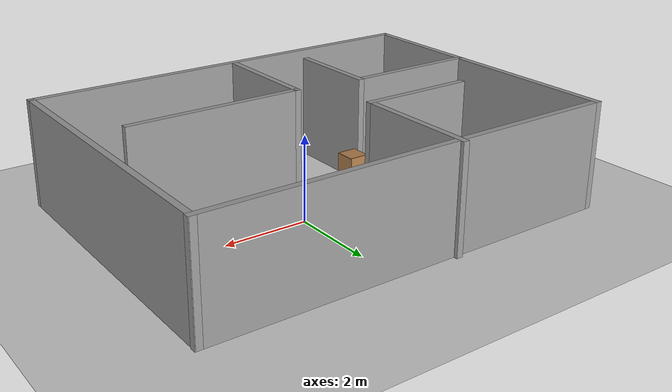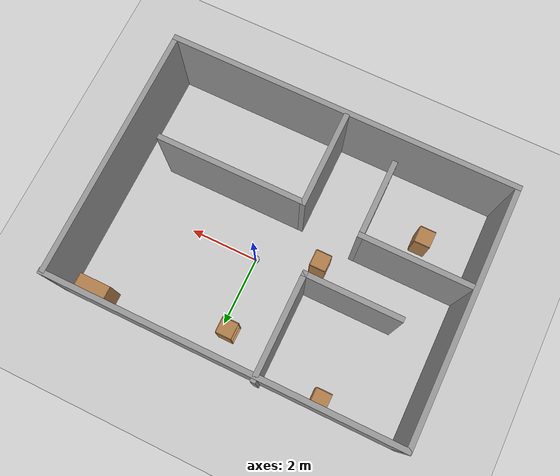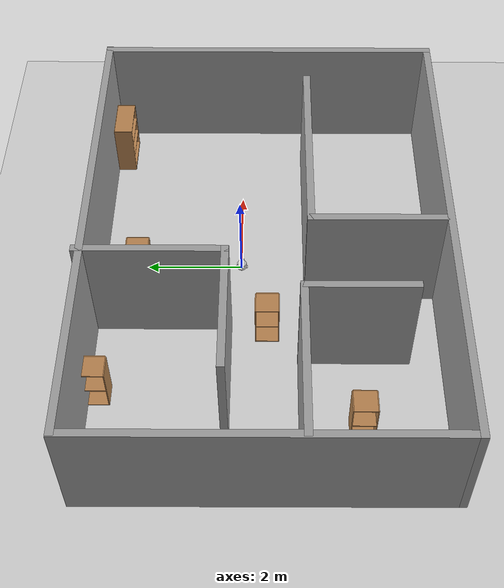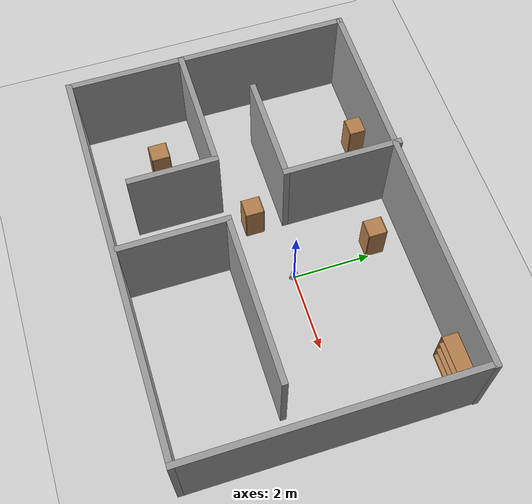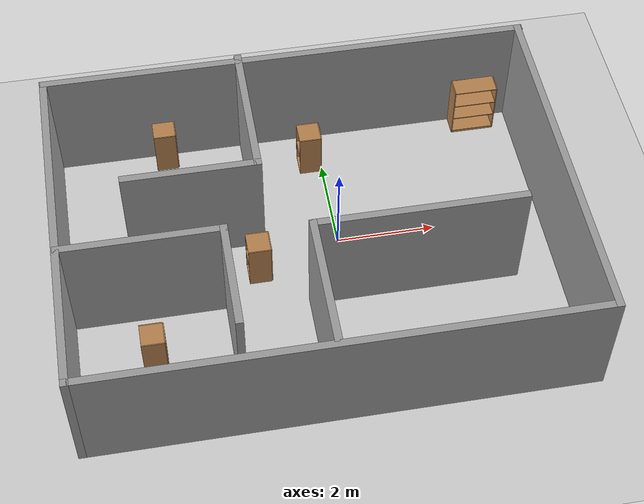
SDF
<sdf version="1.7">
 <world name="default">
  <light name="sun" type="directional">
   <pose>0 0 10 0 -0 0</pose>
   <diffuse>0.8 0.8 0.8 1</diffuse>
   <specular>0.2 0.2 0.2 1</specular>
   <attenuation>
    <range>1000</range>
    <constant>0.9</constant>
    <linear>0.01</linear>
    <quadratic>0.001</quadratic>
   </attenuation>
   <direction>-0.5 0.1 -0.9</direction>
   <spot><inner_angle>0</inner_angle><outer_angle>0</outer_angle><falloff>0</falloff></spot>
  </light>
  <model name="ground_plane">
   <static>1</static>
   <link name="link">
    <collision name="collision">
     <geometry><plane><normal>0 0 1</normal><size>100 100</size></plane></geometry>
     <surface><friction><ode><mu>100</mu><mu2>50</mu2></ode></friction></surface>
    </collision>
    <visual name="visual">
     <cast_shadows>0</cast_shadows>
     <geometry><plane><normal>0 0 1</normal><size>100 100</size></plane></geometry>
     <material>
      <script><uri>file://media/materials/scripts/gazebo.material</uri><name>Gazebo/Grey</name></script>
     </material>
    </visual>
   </link>
  </model>
  <gravity>0 0 -9.8</gravity>
  <magnetic_field>6e-06 2.3e-05 -4.2e-05</magnetic_field>
  <atmosphere type="adiabatic"/>
  <physics type="ode">
   <max_step_size>0.001</max_step_size>
   <real_time_factor>1</real_time_factor>
   <real_time_update_rate>1000</real_time_update_rate>
  </physics>
  <scene><ambient>0.4 0.4 0.4 1</ambient><background>0.7 0.7 0.7 1</background><shadows>1</shadows></scene>
  <audio><device>default</device></audio>
  <spherical_coordinates>
   <surface_model>EARTH_WGS84</surface_model>
   <latitude_deg>0</latitude_deg>
   <longitude_deg>0</longitude_deg>
   <elevation>0</elevation>
   <heading_deg>0</heading_deg>
  </spherical_coordinates>
  <model name="fishbot">
   <link name="base_footprint">
    <inertial>
     <pose>0.007407 0 0.100926 0 -0 0</pose>
     <mass>1.35</mass>
     <inertia>
      <ixx>0.00650192</ixx>
      <ixy>0</ixy>
      <ixz>-0.000650741</ixz>
      <iyy>0.00798784</iyy>
      <iyz>0</iyz>
      <izz>0.00667867</izz>
     </inertia>
    </inertial>
    <collision name="base_footprint_fixed_joint_lump__base_link_collision">
     <pose>0 0 0.091 0 -0 0</pose>
     <geometry><cylinder><length>0.12</length><radius>0.1</radius></cylinder></geometry>
    </collision>
    <collision name="base_footprint_fixed_joint_lump__back_caster_link_collision_1">
     <pose>-0.08 0 0.015 0 -0 0</pose>
     <geometry><sphere><radius>0.016</radius></sphere></geometry>
     <surface>
      <contact><ode><kp>1e+09</kp><kd>1</kd></ode></contact>
      <friction><ode><mu>0</mu><mu2>0</mu2></ode></friction>
     </surface>
    </collision>
    <collision name="base_footprint_fixed_joint_lump__camera_link_collision_2">
     <pose>0.1 0 0.166 0 -0 0</pose>
     <geometry><box><size>0.02 0.1 0.02</size></box></geometry>
    </collision>
    <collision name="base_footprint_fixed_joint_lump__front_caster_link_collision_3">
     <pose>0.08 0 0.015 0 -0 0</pose>
     <geometry><sphere><radius>0.016</radius></sphere></geometry>
     <surface>
      <contact><ode><kp>1e+09</kp><kd>1</kd></ode></contact>
      <friction><ode><mu>0</mu><mu2>0</mu2></ode></friction>
     </surface>
    </collision>
    <collision name="base_footprint_fixed_joint_lump__imu_link_collision_4">
     <pose>0 0 0.111 0 -0 0</pose>
     <geometry><box><size>0.02 0.02 0.02</size></box></geometry>
    </collision>
    <collision name="base_footprint_fixed_joint_lump__laser_cylinder_link_collision_5">
     <pose>0 0 0.191 0 -0 0</pose>
     <geometry><cylinder><length>0.1</length><radius>0.01</radius></cylinder></geometry>
    </collision>
    <collision name="base_footprint_fixed_joint_lump__laser_link_collision_6">
     <pose>0 0 0.241 0 -0 0</pose>
     <geometry><cylinder><length>0.02</length><radius>0.02</radius></cylinder></geometry>
    </collision>
    <visual name="base_footprint_fixed_joint_lump__base_link_visual">
     <pose>0 0 0.091 0 -0 0</pose>
     <geometry><cylinder><length>0.12</length><radius>0.1</radius></cylinder></geometry>
    </visual>
    <visual name="base_footprint_fixed_joint_lump__back_caster_link_visual_1">
     <pose>-0.08 0 0.015 0 -0 0</pose>
     <geometry><sphere><radius>0.016</radius></sphere></geometry>
    </visual>
    <visual name="base_footprint_fixed_joint_lump__camera_link_visual_2">
     <pose>0.1 0 0.166 0 -0 0</pose>
     <geometry><box><size>0.02 0.1 0.02</size></box></geometry>
    </visual>
    <visual name="base_footprint_fixed_joint_lump__front_caster_link_visual_3">
     <pose>0.08 0 0.015 0 -0 0</pose>
     <geometry><sphere><radius>0.016</radius></sphere></geometry>
    </visual>
    <visual name="base_footprint_fixed_joint_lump__imu_link_visual_4">
     <pose>0 0 0.111 0 -0 0</pose>
     <geometry><box><size>0.02 0.02 0.02</size></box></geometry>
    </visual>
    <visual name="base_footprint_fixed_joint_lump__laser_cylinder_link_visual_5">
     <pose>0 0 0.191 0 -0 0</pose>
     <geometry><cylinder><length>0.1</length><radius>0.01</radius></cylinder></geometry>
     <material>
      <script><name>Gazebo/Black</name><uri>file://media/materials/scripts/gazebo.material</uri></script>
     </material>
    </visual>
    <visual name="base_footprint_fixed_joint_lump__laser_link_visual_6">
     <pose>0 0 0.241 0 -0 0</pose>
     <geometry><cylinder><length>0.02</length><radius>0.02</radius></cylinder></geometry>
     <material>
      <script><name>Gazebo/Black</name><uri>file://media/materials/scripts/gazebo.material</uri></script>
     </material>
    </visual>
    <sensor name="camera_sensor" type="depth">
     <plugin name="depth_camera" filename="libgazebo_ros_camera.so">
      <frame_name>camera_optical_link</frame_name>
     </plugin>
     <always_on>1</always_on>
     <update_rate>10</update_rate>
     <camera name="camera">
      <horizontal_fov>1.50098</horizontal_fov>
      <image><width>800</width><height>600</height><format>R8G8B8</format></image>
      <distortion><k1>0</k1><k2>0</k2><k3>0</k3><p1>0</p1><p2>0</p2><center>0.5 0.5</center></distortion>
      <clip><near>0.1</near><far>100</far></clip>
     </camera>
     <pose>0.1 0 0.166 0 -0 0</pose>
    </sensor>
    <sensor name="imu_sensor" type="imu">
     <plugin name="imu_plugin" filename="libgazebo_ros_imu_sensor.so">
      <ros><namespace>/</namespace><remapping>~/out:=imu</remapping></ros>
      <initial_orientation_as_reference>0</initial_orientation_as_reference>
     </plugin>
     <update_rate>100</update_rate>
     <always_on>1</always_on>
     <imu>
      <angular_velocity>
       <x>
        <noise type="gaussian">
         <mean>0</mean>
         <stddev>0.0002</stddev>
         <bias_mean>7.5e-06</bias_mean>
         <bias_stddev>8e-07</bias_stddev>
        </noise>
       </x>
       <y>
        <noise type="gaussian">
         <mean>0</mean>
         <stddev>0.0002</stddev>
         <bias_mean>7.5e-06</bias_mean>
         <bias_stddev>8e-07</bias_stddev>
        </noise>
       </y>
       <z>
        <noise type="gaussian">
         <mean>0</mean>
         <stddev>0.0002</stddev>
         <bias_mean>7.5e-06</bias_mean>
         <bias_stddev>8e-07</bias_stddev>
        </noise>
       </z>
      </angular_velocity>
      <linear_acceleration>
       <x>
        <noise type="gaussian">
         <mean>0</mean>
         <stddev>0.017</stddev>
         <bias_mean>0.1</bias_mean>
         <bias_stddev>0.001</bias_stddev>
        </noise>
       </x>
       <y>
        <noise type="gaussian">
         <mean>0</mean>
         <stddev>0.017</stddev>
         <bias_mean>0.1</bias_mean>
         <bias_stddev>0.001</bias_stddev>
        </noise>
       </y>
       <z>
        <noise type="gaussian">
         <mean>0</mean>
         <stddev>0.017</stddev>
         <bias_mean>0.1</bias_mean>
         <bias_stddev>0.001</bias_stddev>
        </noise>
       </z>
      </linear_acceleration>
     </imu>
     <pose>0 0 0.111 0 -0 0</pose>
    </sensor>
    <sensor name="laserscan" type="ray">
     <plugin name="laserscan" filename="libgazebo_ros_ray_sensor.so">
      <ros><namespace>/</namespace><remapping>~/out:=scan</remapping></ros>
      <output_type>sensor_msgs/LaserScan</output_type>
      <frame_name>laser_link</frame_name>
     </plugin>
     <always_on>1</always_on>
     <visualize>1</visualize>
     <update_rate>5</update_rate>
     <ray>
      <scan>
       <horizontal>
        <samples>360</samples>
        <resolution>1</resolution>
        <min_angle>0</min_angle>
        <max_angle>6.28</max_angle>
       </horizontal>
       <vertical><samples>1</samples><min_angle>0</min_angle><max_angle>0</max_angle></vertical>
      </scan>
      <range><min>0.12</min><max>8</max><resolution>0.015</resolution></range>
      <noise><type>gaussian</type><mean>0</mean><stddev>0.01</stddev></noise>
     </ray>
     <pose>0 0 0.241 0 -0 0</pose>
    </sensor>
   </link>
   <joint name="left_wheel_joint" type="revolute">
    <pose relative_to="base_footprint">0 0.1 0.031 0 -0 0</pose>
    <parent>base_footprint</parent>
    <child>left_wheel_link</child>
    <axis>
     <xyz>0 1 0</xyz>
     <limit><lower>-1e+16</lower><upper>1e+16</upper></limit>
     <dynamics><spring_reference>0</spring_reference><spring_stiffness>0</spring_stiffness></dynamics>
    </axis>
   </joint>
   <link name="left_wheel_link">
    <pose relative_to="left_wheel_joint">0 0 0 0 -0 0</pose>
    <inertial>
     <mass>0.05</mass>
     <inertia>
      <ixx>1.98698e-05</ixx>
      <ixy>0</ixy>
      <ixz>0</ixz>
      <iyy>1.98698e-05</iyy>
      <iyz>0</iyz>
      <izz>2.64063e-05</izz>
     </inertia>
    </inertial>
    <collision name="left_wheel_link_collision">
     <pose>0 0 0 1.57079 -0 0</pose>
     <geometry><cylinder><length>0.04</length><radius>0.0325</radius></cylinder></geometry>
     <surface>
      <contact><ode><kp>1e+09</kp><kd>1</kd></ode></contact>
      <friction><ode><mu>20</mu><mu2>20</mu2></ode></friction>
     </surface>
    </collision>
    <visual name="left_wheel_link_visual">
     <pose>0 0 0 1.57079 -0 0</pose>
     <geometry><cylinder><length>0.04</length><radius>0.0325</radius></cylinder></geometry>
    </visual>
   </link>
   <joint name="right_wheel_joint" type="revolute">
    <pose relative_to="base_footprint">0 -0.1 0.031 0 -0 0</pose>
    <parent>base_footprint</parent>
    <child>right_wheel_link</child>
    <axis>
     <xyz>0 1 0</xyz>
     <limit><lower>-1e+16</lower><upper>1e+16</upper></limit>
     <dynamics><spring_reference>0</spring_reference><spring_stiffness>0</spring_stiffness></dynamics>
    </axis>
   </joint>
   <link name="right_wheel_link">
    <pose relative_to="right_wheel_joint">0 0 0 0 -0 0</pose>
    <inertial>
     <mass>0.05</mass>
     <inertia>
      <ixx>1.98698e-05</ixx>
      <ixy>0</ixy>
      <ixz>0</ixz>
      <iyy>1.98698e-05</iyy>
      <iyz>0</iyz>
      <izz>2.64063e-05</izz>
     </inertia>
    </inertial>
    <collision name="right_wheel_link_collision">
     <pose>0 0 0 1.57079 -0 0</pose>
     <geometry><cylinder><length>0.04</length><radius>0.0325</radius></cylinder></geometry>
     <surface>
      <contact><ode><kp>1e+09</kp><kd>1</kd></ode></contact>
      <friction><ode><mu>20</mu><mu2>20</mu2></ode></friction>
     </surface>
    </collision>
    <visual name="right_wheel_link_visual">
     <pose>0 0 0 1.57079 -0 0</pose>
     <geometry><cylinder><length>0.04</length><radius>0.0325</radius></cylinder></geometry>
    </visual>
   </link>
   <static>0</static>
   <plugin name="gazebo_ros2_control" filename="libgazebo_ros2_control.so">
    <parameters>/home/zilu/myProgramFile/learnRos2/cpp/install/ch6_bot_desc/share/ch6_bot_desc/config/fishbot_ros2_controller.yaml</parameters>
    <ros>
     <remapping>/fishbot_diff_drive_controller/cmd_vel_unstamped:=/cmd_vel</remapping>
     <remapping>/fishbot_diff_drive_controller/odom:=/odom</remapping>
    </ros>
   </plugin>
   <pose>0.002888 -0.005666 0.001497 2e-06 0.006212 -0.000967</pose>
  </model>
  <model name="model">
   <pose>-0.603149 -0.514582 0 0 -0 0</pose>
   <link name="Wall_0">
    <collision name="Wall_0_Collision">
     <geometry><box><size>10 0.15 2.5</size></box></geometry>
     <pose>0 0 1.25 0 -0 0</pose>
    </collision>
    <visual name="Wall_0_Visual">
     <pose>0 0 1.25 0 -0 0</pose>
     <geometry><box><size>10 0.15 2.5</size></box></geometry>
     <material>
      <script><uri>file://media/materials/scripts/gazebo.material</uri><name>Gazebo/Grey</name></script>
      <ambient>1 1 1 1</ambient>
     </material>
     <meta><layer>0</layer></meta>
    </visual>
    <pose>-0.008745 -3.60924 0 0 -0 3.14159</pose>
   </link>
   <link name="Wall_10">
    <collision name="Wall_10_Collision">
     <geometry><box><size>3 0.15 2.5</size></box></geometry>
     <pose>0 0 1.25 0 -0 0</pose>
    </collision>
    <visual name="Wall_10_Visual">
     <pose>0 0 1.25 0 -0 0</pose>
     <geometry><box><size>3 0.15 2.5</size></box></geometry>
     <material>
      <script><uri>file://media/materials/scripts/gazebo.material</uri><name>Gazebo/Grey</name></script>
      <ambient>1 1 1 1</ambient>
     </material>
     <meta><layer>0</layer></meta>
    </visual>
    <pose>-0.95956 2.18425 0 0 -0 -1.5708</pose>
   </link>
   <link name="Wall_11">
    <collision name="Wall_11_Collision">
     <geometry><box><size>2.75 0.15 2.5</size></box></geometry>
     <pose>0 0 1.25 0 -0 0</pose>
    </collision>
    <visual name="Wall_11_Visual">
     <pose>0 0 1.25 0 -0 0</pose>
     <geometry><box><size>2.75 0.15 2.5</size></box></geometry>
     <material>
      <script><uri>file://media/materials/scripts/gazebo.material</uri><name>Gazebo/Grey</name></script>
      <ambient>1 1 1 1</ambient>
     </material>
     <meta><layer>0</layer></meta>
    </visual>
    <pose>-2.25956 0.75925 0 0 -0 3.14159</pose>
   </link>
   <link name="Wall_13">
    <collision name="Wall_13_Collision">
     <geometry><box><size>3.25 0.15 2.5</size></box></geometry>
     <pose>0 0 1.25 0 -0 0</pose>
    </collision>
    <visual name="Wall_13_Visual">
     <pose>0 0 1.25 0 -0 0</pose>
     <geometry><box><size>3.25 0.15 2.5</size></box></geometry>
     <material>
      <script><uri>file://media/materials/scripts/gazebo.material</uri><name>Gazebo/Grey</name></script>
      <ambient>1 1 1 1</ambient>
     </material>
     <meta><layer>0</layer></meta>
    </visual>
    <pose>-3.36231 -0.728285 0 0 -0 0</pose>
   </link>
   <link name="Wall_14">
    <collision name="Wall_14_Collision">
     <geometry><box><size>2.25 0.15 2.5</size></box></geometry>
     <pose>0 0 1.25 0 -0 0</pose>
    </collision>
    <visual name="Wall_14_Visual">
     <pose>0 0 1.25 0 -0 0</pose>
     <geometry><box><size>2.25 0.15 2.5</size></box></geometry>
     <material>
      <script><uri>file://media/materials/scripts/gazebo.material</uri><name>Gazebo/Grey</name></script>
      <ambient>1 1 1 1</ambient>
     </material>
     <meta><layer>0</layer></meta>
    </visual>
    <pose>-1.81231 -1.77828 0 0 -0 -1.5708</pose>
   </link>
   <link name="Wall_16">
    <collision name="Wall_16_Collision">
     <geometry><box><size>2.75 0.15 2.5</size></box></geometry>
     <pose>0 0 1.25 0 -0 0</pose>
    </collision>
    <visual name="Wall_16_Visual">
     <pose>0 0 1.25 0 -0 0</pose>
     <geometry><box><size>2.75 0.15 2.5</size></box></geometry>
     <material>
      <script><uri>file://media/materials/scripts/gazebo.material</uri><name>Gazebo/Grey</name></script>
      <ambient>1 1 1 1</ambient>
     </material>
     <meta><layer>0</layer></meta>
    </visual>
    <pose>-0.155017 -2.19171 0 0 -0 1.5708</pose>
   </link>
   <link name="Wall_17">
    <collision name="Wall_17_Collision">
     <geometry><box><size>4.25 0.15 2.5</size></box></geometry>
     <pose>0 0 1.25 0 -0 0</pose>
    </collision>
    <visual name="Wall_17_Visual">
     <pose>0 0 1.25 0 -0 0</pose>
     <geometry><box><size>4.25 0.15 2.5</size></box></geometry>
     <material>
      <script><uri>file://media/materials/scripts/gazebo.material</uri><name>Gazebo/Grey</name></script>
      <ambient>1 1 1 1</ambient>
     </material>
     <meta><layer>0</layer></meta>
    </visual>
    <pose>1.89498 -0.891715 0 0 -0 0</pose>
   </link>
   <link name="Wall_6">
    <collision name="Wall_6_Collision">
     <geometry><box><size>7.27986 0.15 2.5</size></box></geometry>
     <pose>0 0 1.25 0 -0 0</pose>
    </collision>
    <visual name="Wall_6_Visual">
     <pose>0 0 1.25 0 -0 0</pose>
     <geometry><box><size>7.27986 0.15 2.5</size></box></geometry>
     <material>
      <script><uri>file://media/materials/scripts/gazebo.material</uri><name>Gazebo/Grey</name></script>
      <ambient>1 1 1 1</ambient>
     </material>
     <meta><layer>0</layer></meta>
    </visual>
    <pose>-4.93375 -0.044319 0 0 -0 1.5708</pose>
   </link>
   <link name="Wall_7">
    <collision name="Wall_7_Collision">
     <geometry><box><size>10 0.15 2.5</size></box></geometry>
     <pose>0 0 1.25 0 -0 0</pose>
    </collision>
    <visual name="Wall_7_Visual">
     <pose>0 0 1.25 0 -0 0</pose>
     <geometry><box><size>10 0.15 2.5</size></box></geometry>
     <material>
      <script><uri>file://media/materials/scripts/gazebo.material</uri><name>Gazebo/Grey</name></script>
      <ambient>1 1 1 1</ambient>
     </material>
     <meta><layer>0</layer></meta>
    </visual>
    <pose>0.008745 3.5206 0 0 -0 0</pose>
   </link>
   <link name="Wall_8">
    <collision name="Wall_8_Collision">
     <geometry><box><size>7.27986 0.15 2.5</size></box></geometry>
     <pose>0 0 1.25 0 -0 0</pose>
    </collision>
    <visual name="Wall_8_Visual">
     <pose>0 0 1.25 0 -0 0</pose>
     <geometry><box><size>7.27986 0.15 2.5</size></box></geometry>
     <material>
      <script><uri>file://media/materials/scripts/gazebo.material</uri><name>Gazebo/Grey</name></script>
      <ambient>1 1 1 1</ambient>
     </material>
     <meta><layer>0</layer></meta>
    </visual>
    <pose>4.91625 -0.044319 0 0 -0 -1.5708</pose>
   </link>
   <static>1</static>
  </model>
  <model name="bookshelf">
   <static>1</static>
   <link name="link">
    <inertial><mass>1</mass></inertial>
    <collision name="back">
     <pose>0 0.005 0.6 0 -0 0</pose>
     <geometry><box><size>0.9 0.01 1.2</size></box></geometry>
    </collision>
    <visual name="visual1">
     <pose>0 0.005 0.6 0 -0 0</pose>
     <geometry><box><size>0.9 0.01 1.2</size></box></geometry>
     <material>
      <script><uri>file://media/materials/scripts/gazebo.material</uri><name>Gazebo/Wood</name></script>
     </material>
    </visual>
    <collision name="left_side">
     <pose>0.45 -0.195 0.6 0 -0 0</pose>
     <geometry><box><size>0.02 0.4 1.2</size></box></geometry>
    </collision>
    <visual name="visual2">
     <pose>0.45 -0.195 0.6 0 -0 0</pose>
     <geometry><box><size>0.02 0.4 1.2</size></box></geometry>
     <material>
      <script><uri>file://media/materials/scripts/gazebo.material</uri><name>Gazebo/Wood</name></script>
     </material>
    </visual>
    <collision name="right_side">
     <pose>-0.45 -0.195 0.6 0 -0 0</pose>
     <geometry><box><size>0.02 0.4 1.2</size></box></geometry>
    </collision>
    <visual name="visual3">
     <pose>-0.45 -0.195 0.6 0 -0 0</pose>
     <geometry><box><size>0.02 0.4 1.2</size></box></geometry>
     <material>
      <script><uri>file://media/materials/scripts/gazebo.material</uri><name>Gazebo/Wood</name></script>
     </material>
    </visual>
    <collision name="bottom">
     <pose>0 -0.195 0.03 0 -0 0</pose>
     <geometry><box><size>0.88 0.4 0.06</size></box></geometry>
    </collision>
    <visual name="visual4">
     <pose>0 -0.195 0.03 0 -0 0</pose>
     <geometry><box><size>0.88 0.4 0.06</size></box></geometry>
     <material>
      <script><uri>file://media/materials/scripts/gazebo.material</uri><name>Gazebo/Wood</name></script>
     </material>
    </visual>
    <collision name="top">
     <pose>0 -0.195 1.19 0 -0 0</pose>
     <geometry><box><size>0.88 0.4 0.02</size></box></geometry>
    </collision>
    <visual name="visual5">
     <pose>0 -0.195 1.19 0 -0 0</pose>
     <geometry><box><size>0.88 0.4 0.02</size></box></geometry>
     <material>
      <script><uri>file://media/materials/scripts/gazebo.material</uri><name>Gazebo/Wood</name></script>
     </material>
    </visual>
    <collision name="low_shelf">
     <pose>0 -0.195 0.43 0 -0 0</pose>
     <geometry><box><size>0.88 0.4 0.02</size></box></geometry>
    </collision>
    <visual name="visual6">
     <pose>0 -0.195 0.43 0 -0 0</pose>
     <geometry><box><size>0.88 0.4 0.02</size></box></geometry>
     <material>
      <script><uri>file://media/materials/scripts/gazebo.material</uri><name>Gazebo/Wood</name></script>
     </material>
    </visual>
    <collision name="high_shelf">
     <pose>0 -0.195 0.8 0 -0 0</pose>
     <geometry><box><size>0.88 0.4 0.02</size></box></geometry>
    </collision>
    <visual name="visual7">
     <pose>0 -0.195 0.8 0 -0 0</pose>
     <geometry><box><size>0.88 0.4 0.02</size></box></geometry>
     <material>
      <script><uri>file://media/materials/scripts/gazebo.material</uri><name>Gazebo/Wood</name></script>
     </material>
    </visual>
   </link>
   <pose>3.44319 2.92527 0 0 -0 0</pose>
  </model>
  <model name="cabinet">
   <static>1</static>
   <link name="cabinet_bottom_plate">
    <inertial>
     <pose>0 0 -1 0 -0 0</pose>
     <inertia><ixx>2.05</ixx><ixy>0</ixy><ixz>0</ixz><iyy>2.05</iyy><iyz>0</iyz><izz>2.05</izz></inertia>
     <mass>25</mass>
    </inertial>
    <collision name="cabinet_bottom_plate_geom">
     <pose>0 0 0.01 0 -0 0</pose>
     <geometry><box><size>0.45 0.45 0.02</size></box></geometry>
    </collision>
    <visual name="cabinet_bottom_plate_geom_visual">
     <pose>0 0 0.01 0 -0 0</pose>
     <geometry><box><size>0.45 0.45 0.02</size></box></geometry>
     <material>
      <script><uri>file://media/materials/scripts/gazebo.material</uri><name>Gazebo/Wood</name></script>
     </material>
    </visual>
    <collision name="cabinet_bottom_plate_geom_cabinet_back_plate">
     <pose>0.235 0 0.51 0 -0 0</pose>
     <geometry><box><size>0.02 0.45 1.02</size></box></geometry>
    </collision>
    <visual name="cabinet_bottom_plate_geom_cabinet_back_plate_visual">
     <pose>0.235 0 0.51 0 -0 0</pose>
     <geometry><box><size>0.02 0.45 1.02</size></box></geometry>
     <material>
      <script><uri>file://media/materials/scripts/gazebo.material</uri><name>Gazebo/Wood</name></script>
     </material>
    </visual>
    <collision name="cabinet_bottom_plate_geom_cabinet_left_plate">
     <pose>0 0.235 0.51 0 -0 0</pose>
     <geometry><box><size>0.45 0.02 1.02</size></box></geometry>
    </collision>
    <visual name="cabinet_bottom_plate_geom_cabinet_left_plate_visual">
     <pose>0 0.235 0.51 0 -0 0</pose>
     <geometry><box><size>0.45 0.02 1.02</size></box></geometry>
     <material>
      <script><uri>file://media/materials/scripts/gazebo.material</uri><name>Gazebo/Wood</name></script>
     </material>
    </visual>
    <collision name="cabinet_bottom_plate_geom_cabinet_middle_plate">
     <pose>0 0 0.51 0 -0 0</pose>
     <geometry><box><size>0.45 0.45 0.02</size></box></geometry>
    </collision>
    <visual name="cabinet_bottom_plate_geom_cabinet_middle_plate_visual">
     <pose>0 0 0.51 0 -0 0</pose>
     <geometry><box><size>0.45 0.45 0.02</size></box></geometry>
     <material>
      <script><uri>file://media/materials/scripts/gazebo.material</uri><name>Gazebo/Wood</name></script>
     </material>
    </visual>
    <collision name="cabinet_bottom_plate_geom_cabinet_right_plate">
     <pose>0 -0.235 0.51 0 -0 0</pose>
     <geometry><box><size>0.45 0.02 1.02</size></box></geometry>
    </collision>
    <visual name="cabinet_bottom_plate_geom_cabinet_right_plate_visual">
     <pose>0 -0.235 0.51 0 -0 0</pose>
     <geometry><box><size>0.45 0.02 1.02</size></box></geometry>
     <material>
      <script><uri>file://media/materials/scripts/gazebo.material</uri><name>Gazebo/Wood</name></script>
     </material>
    </visual>
    <collision name="cabinet_bottom_plate_geom_cabinet_top_plate">
     <pose>0 0 1.01 0 -0 0</pose>
     <geometry><box><size>0.45 0.45 0.02</size></box></geometry>
    </collision>
    <visual name="cabinet_bottom_plate_geom_cabinet_top_plate_visual">
     <pose>0 0 1.01 0 -0 0</pose>
     <geometry><box><size>0.45 0.45 0.02</size></box></geometry>
     <material>
      <script><uri>file://media/materials/scripts/gazebo.material</uri><name>Gazebo/Wood</name></script>
     </material>
    </visual>
   </link>
   <pose>-3.25013 2.75113 0 0 -0 0</pose>
  </model>
  <model name="cabinet_0">
   <static>1</static>
   <link name="cabinet_bottom_plate">
    <inertial>
     <pose>0 0 -1 0 -0 0</pose>
     <inertia><ixx>2.05</ixx><ixy>0</ixy><ixz>0</ixz><iyy>2.05</iyy><iyz>0</iyz><izz>2.05</izz></inertia>
     <mass>25</mass>
    </inertial>
    <collision name="cabinet_bottom_plate_geom">
     <pose>0 0 0.01 0 -0 0</pose>
     <geometry><box><size>0.45 0.45 0.02</size></box></geometry>
    </collision>
    <visual name="cabinet_bottom_plate_geom_visual">
     <pose>0 0 0.01 0 -0 0</pose>
     <geometry><box><size>0.45 0.45 0.02</size></box></geometry>
     <material>
      <script><uri>file://media/materials/scripts/gazebo.material</uri><name>Gazebo/Wood</name></script>
     </material>
    </visual>
    <collision name="cabinet_bottom_plate_geom_cabinet_back_plate">
     <pose>0.235 0 0.51 0 -0 0</pose>
     <geometry><box><size>0.02 0.45 1.02</size></box></geometry>
    </collision>
    <visual name="cabinet_bottom_plate_geom_cabinet_back_plate_visual">
     <pose>0.235 0 0.51 0 -0 0</pose>
     <geometry><box><size>0.02 0.45 1.02</size></box></geometry>
     <material>
      <script><uri>file://media/materials/scripts/gazebo.material</uri><name>Gazebo/Wood</name></script>
     </material>
    </visual>
    <collision name="cabinet_bottom_plate_geom_cabinet_left_plate">
     <pose>0 0.235 0.51 0 -0 0</pose>
     <geometry><box><size>0.45 0.02 1.02</size></box></geometry>
    </collision>
    <visual name="cabinet_bottom_plate_geom_cabinet_left_plate_visual">
     <pose>0 0.235 0.51 0 -0 0</pose>
     <geometry><box><size>0.45 0.02 1.02</size></box></geometry>
     <material>
      <script><uri>file://media/materials/scripts/gazebo.material</uri><name>Gazebo/Wood</name></script>
     </material>
    </visual>
    <collision name="cabinet_bottom_plate_geom_cabinet_middle_plate">
     <pose>0 0 0.51 0 -0 0</pose>
     <geometry><box><size>0.45 0.45 0.02</size></box></geometry>
    </collision>
    <visual name="cabinet_bottom_plate_geom_cabinet_middle_plate_visual">
     <pose>0 0 0.51 0 -0 0</pose>
     <geometry><box><size>0.45 0.45 0.02</size></box></geometry>
     <material>
      <script><uri>file://media/materials/scripts/gazebo.material</uri><name>Gazebo/Wood</name></script>
     </material>
    </visual>
    <collision name="cabinet_bottom_plate_geom_cabinet_right_plate">
     <pose>0 -0.235 0.51 0 -0 0</pose>
     <geometry><box><size>0.45 0.02 1.02</size></box></geometry>
    </collision>
    <visual name="cabinet_bottom_plate_geom_cabinet_right_plate_visual">
     <pose>0 -0.235 0.51 0 -0 0</pose>
     <geometry><box><size>0.45 0.02 1.02</size></box></geometry>
     <material>
      <script><uri>file://media/materials/scripts/gazebo.material</uri><name>Gazebo/Wood</name></script>
     </material>
    </visual>
    <collision name="cabinet_bottom_plate_geom_cabinet_top_plate">
     <pose>0 0 1.01 0 -0 0</pose>
     <geometry><box><size>0.45 0.45 0.02</size></box></geometry>
    </collision>
    <visual name="cabinet_bottom_plate_geom_cabinet_top_plate_visual">
     <pose>0 0 1.01 0 -0 0</pose>
     <geometry><box><size>0.45 0.45 0.02</size></box></geometry>
     <material>
      <script><uri>file://media/materials/scripts/gazebo.material</uri><name>Gazebo/Wood</name></script>
     </material>
    </visual>
   </link>
   <pose>-3.99959 -2.37886 0 0 -0 0</pose>
  </model>
  <model name="cabinet_1">
   <static>1</static>
   <link name="cabinet_bottom_plate">
    <inertial>
     <pose>0 0 -1 0 -0 0</pose>
     <inertia><ixx>2.05</ixx><ixy>0</ixy><ixz>0</ixz><iyy>2.05</iyy><iyz>0</iyz><izz>2.05</izz></inertia>
     <mass>25</mass>
    </inertial>
    <collision name="cabinet_bottom_plate_geom">
     <pose>0 0 0.01 0 -0 0</pose>
     <geometry><box><size>0.45 0.45 0.02</size></box></geometry>
    </collision>
    <visual name="cabinet_bottom_plate_geom_visual">
     <pose>0 0 0.01 0 -0 0</pose>
     <geometry><box><size>0.45 0.45 0.02</size></box></geometry>
     <material>
      <script><uri>file://media/materials/scripts/gazebo.material</uri><name>Gazebo/Wood</name></script>
     </material>
    </visual>
    <collision name="cabinet_bottom_plate_geom_cabinet_back_plate">
     <pose>0.235 0 0.51 0 -0 0</pose>
     <geometry><box><size>0.02 0.45 1.02</size></box></geometry>
    </collision>
    <visual name="cabinet_bottom_plate_geom_cabinet_back_plate_visual">
     <pose>0.235 0 0.51 0 -0 0</pose>
     <geometry><box><size>0.02 0.45 1.02</size></box></geometry>
     <material>
      <script><uri>file://media/materials/scripts/gazebo.material</uri><name>Gazebo/Wood</name></script>
     </material>
    </visual>
    <collision name="cabinet_bottom_plate_geom_cabinet_left_plate">
     <pose>0 0.235 0.51 0 -0 0</pose>
     <geometry><box><size>0.45 0.02 1.02</size></box></geometry>
    </collision>
    <visual name="cabinet_bottom_plate_geom_cabinet_left_plate_visual">
     <pose>0 0.235 0.51 0 -0 0</pose>
     <geometry><box><size>0.45 0.02 1.02</size></box></geometry>
     <material>
      <script><uri>file://media/materials/scripts/gazebo.material</uri><name>Gazebo/Wood</name></script>
     </material>
    </visual>
    <collision name="cabinet_bottom_plate_geom_cabinet_middle_plate">
     <pose>0 0 0.51 0 -0 0</pose>
     <geometry><box><size>0.45 0.45 0.02</size></box></geometry>
    </collision>
    <visual name="cabinet_bottom_plate_geom_cabinet_middle_plate_visual">
     <pose>0 0 0.51 0 -0 0</pose>
     <geometry><box><size>0.45 0.45 0.02</size></box></geometry>
     <material>
      <script><uri>file://media/materials/scripts/gazebo.material</uri><name>Gazebo/Wood</name></script>
     </material>
    </visual>
    <collision name="cabinet_bottom_plate_geom_cabinet_right_plate">
     <pose>0 -0.235 0.51 0 -0 0</pose>
     <geometry><box><size>0.45 0.02 1.02</size></box></geometry>
    </collision>
    <visual name="cabinet_bottom_plate_geom_cabinet_right_plate_visual">
     <pose>0 -0.235 0.51 0 -0 0</pose>
     <geometry><box><size>0.45 0.02 1.02</size></box></geometry>
     <material>
      <script><uri>file://media/materials/scripts/gazebo.material</uri><name>Gazebo/Wood</name></script>
     </material>
    </visual>
    <collision name="cabinet_bottom_plate_geom_cabinet_top_plate">
     <pose>0 0 1.01 0 -0 0</pose>
     <geometry><box><size>0.45 0.45 0.02</size></box></geometry>
    </collision>
    <visual name="cabinet_bottom_plate_geom_cabinet_top_plate_visual">
     <pose>0 0 1.01 0 -0 0</pose>
     <geometry><box><size>0.45 0.45 0.02</size></box></geometry>
     <material>
      <script><uri>file://media/materials/scripts/gazebo.material</uri><name>Gazebo/Wood</name></script>
     </material>
    </visual>
   </link>
   <pose>-0.253709 2.15393 0 0 -0 0</pose>
  </model>
  <model name="cabinet_2">
   <static>1</static>
   <link name="cabinet_bottom_plate">
    <inertial>
     <pose>0 0 -1 0 -0 0</pose>
     <inertia><ixx>2.05</ixx><ixy>0</ixy><ixz>0</ixz><iyy>2.05</iyy><iyz>0</iyz><izz>2.05</izz></inertia>
     <mass>25</mass>
    </inertial>
    <collision name="cabinet_bottom_plate_geom">
     <pose>0 0 0.01 0 -0 0</pose>
     <geometry><box><size>0.45 0.45 0.02</size></box></geometry>
    </collision>
    <visual name="cabinet_bottom_plate_geom_visual">
     <pose>0 0 0.01 0 -0 0</pose>
     <geometry><box><size>0.45 0.45 0.02</size></box></geometry>
     <material>
      <script><uri>file://media/materials/scripts/gazebo.material</uri><name>Gazebo/Wood</name></script>
     </material>
    </visual>
    <collision name="cabinet_bottom_plate_geom_cabinet_back_plate">
     <pose>0.235 0 0.51 0 -0 0</pose>
     <geometry><box><size>0.02 0.45 1.02</size></box></geometry>
    </collision>
    <visual name="cabinet_bottom_plate_geom_cabinet_back_plate_visual">
     <pose>0.235 0 0.51 0 -0 0</pose>
     <geometry><box><size>0.02 0.45 1.02</size></box></geometry>
     <material>
      <script><uri>file://media/materials/scripts/gazebo.material</uri><name>Gazebo/Wood</name></script>
     </material>
    </visual>
    <collision name="cabinet_bottom_plate_geom_cabinet_left_plate">
     <pose>0 0.235 0.51 0 -0 0</pose>
     <geometry><box><size>0.45 0.02 1.02</size></box></geometry>
    </collision>
    <visual name="cabinet_bottom_plate_geom_cabinet_left_plate_visual">
     <pose>0 0.235 0.51 0 -0 0</pose>
     <geometry><box><size>0.45 0.02 1.02</size></box></geometry>
     <material>
      <script><uri>file://media/materials/scripts/gazebo.material</uri><name>Gazebo/Wood</name></script>
     </material>
    </visual>
    <collision name="cabinet_bottom_plate_geom_cabinet_middle_plate">
     <pose>0 0 0.51 0 -0 0</pose>
     <geometry><box><size>0.45 0.45 0.02</size></box></geometry>
    </collision>
    <visual name="cabinet_bottom_plate_geom_cabinet_middle_plate_visual">
     <pose>0 0 0.51 0 -0 0</pose>
     <geometry><box><size>0.45 0.45 0.02</size></box></geometry>
     <material>
      <script><uri>file://media/materials/scripts/gazebo.material</uri><name>Gazebo/Wood</name></script>
     </material>
    </visual>
    <collision name="cabinet_bottom_plate_geom_cabinet_right_plate">
     <pose>0 -0.235 0.51 0 -0 0</pose>
     <geometry><box><size>0.45 0.02 1.02</size></box></geometry>
    </collision>
    <visual name="cabinet_bottom_plate_geom_cabinet_right_plate_visual">
     <pose>0 -0.235 0.51 0 -0 0</pose>
     <geometry><box><size>0.45 0.02 1.02</size></box></geometry>
     <material>
      <script><uri>file://media/materials/scripts/gazebo.material</uri><name>Gazebo/Wood</name></script>
     </material>
    </visual>
    <collision name="cabinet_bottom_plate_geom_cabinet_top_plate">
     <pose>0 0 1.01 0 -0 0</pose>
     <geometry><box><size>0.45 0.45 0.02</size></box></geometry>
    </collision>
    <visual name="cabinet_bottom_plate_geom_cabinet_top_plate_visual">
     <pose>0 0 1.01 0 -0 0</pose>
     <geometry><box><size>0.45 0.45 0.02</size></box></geometry>
     <material>
      <script><uri>file://media/materials/scripts/gazebo.material</uri><name>Gazebo/Wood</name></script>
     </material>
    </visual>
   </link>
   <pose>-1.72035 -0.556509 0 0 -0 0</pose>
  </model>
 </world>
</sdf>
